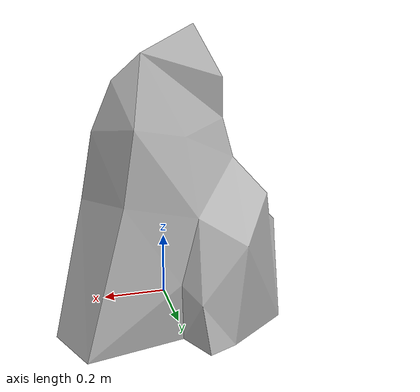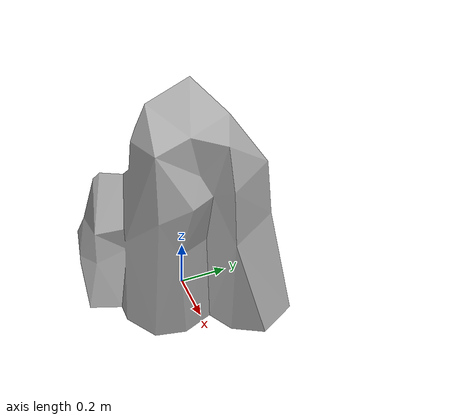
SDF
<?xml version="1.0" ?>
<sdf version="1.5">
  <model name="mars_rock_2">
    <static>true</static>
    <link name="link">
      <collision name="collision">
        <geometry>
          <mesh>
            <uri>model://mars_rock_2/meshes/mars_rock_2.obj</uri>
            <scale>0.03 0.03 0.03</scale>
          </mesh>
        </geometry>
      </collision>
      <visual name="visual">
        <geometry>
          <mesh>
            <uri>model://mars_rock_2/meshes/mars_rock_2.obj</uri>
            <scale>0.03 0.03 0.03</scale>
          </mesh>
        </geometry>
      </visual>
    </link>
  </model>
</sdf>
